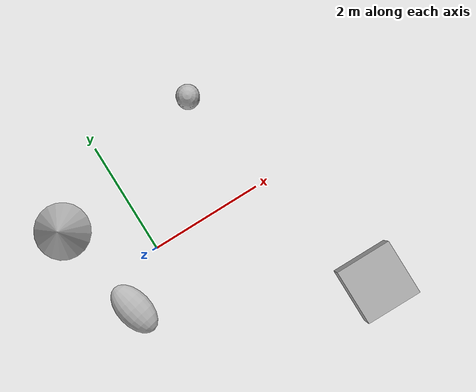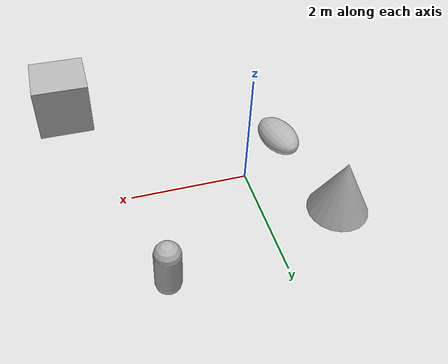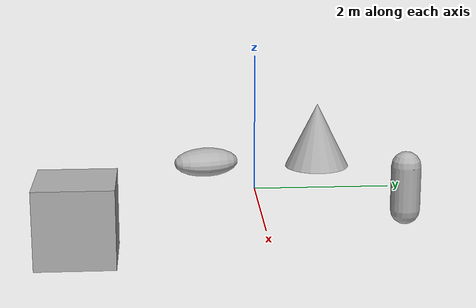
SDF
<sdf version="1.10">
 <world name="empty">
  <gravity>0 0 -9.8000000000000007</gravity>
  <physics type="ode">
   <max_step_size>0.01</max_step_size>
   <real_time_factor>1</real_time_factor>
   <real_time_update_rate>1000</real_time_update_rate>
  </physics>
  <plugin name="ignition::gazebo::systems::Physics" filename="libignition-gazebo-physics-system.so"/>
  <plugin name="ignition::gazebo::systems::UserCommands" filename="libignition-gazebo-user-commands-system.so"/>
  <plugin name="ignition::gazebo::systems::SceneBroadcaster" filename="libignition-gazebo-scene-broadcaster-system.so"/>
  <plugin name="ignition::gazebo::systems::Imu" filename="ignition-gazebo-imu-system"/>
  <plugin name="ignition::gazebo::systems::Sensors" filename="ignition-gazebo-sensors-system">
   <render_engine>ogre2</render_engine>
  </plugin>
  <scene>
   <ambient>1 1 1 1</ambient>
   <background>0.300000012 0.699999988 0.899999976 1</background>
   <shadows>false</shadows>
   <grid>false</grid>
  </scene>
  <magnetic_field>5.5644999999999998e-06 2.2875799999999999e-05 -4.2388400000000002e-05</magnetic_field>
  <atmosphere type="adiabatic"/>
  <model name="ground_plane">
   <static>true</static>
   <link name="link">
    <collision name="collision">
     <geometry><plane><normal>0 0 1</normal><size>1 1</size></plane></geometry>
    </collision>
    <inertial>
     <mass>1</mass>
     <inertia><ixx>1</ixx><ixy>0</ixy><ixz>0</ixz><iyy>1</iyy><iyz>0</iyz><izz>1</izz></inertia>
    </inertial>
   </link>
  </model>
  <model name="box">
   <pose>2.870149870721391 -2.432829395145315 0.49999834952495009 1.0192298441043201e-06 6.6832437451908342e-07 -0.0010202773987914747</pose>
   <link name="box_link">
    <inertial>
     <inertia><ixx>0.16666</ixx><ixy>0</ixy><ixz>0</ixz><iyy>0.16666</iyy><iyz>0</iyz><izz>0.16666</izz></inertia>
     <mass>1</mass>
    </inertial>
    <collision name="box_collision"><geometry><box><size>1 1 1</size></box></geometry></collision>
    <visual name="box_visual">
     <geometry><box><size>1 1 1</size></box></geometry>
     <material>
      <ambient>0.300000012 0.300000012 0.300000012 1</ambient>
      <diffuse>0.699999988 0.699999988 0.699999988 1</diffuse>
      <specular>1 1 1 1</specular>
     </material>
    </visual>
   </link>
   <static>false</static>
  </model>
  <model name="capsule">
   <pose>1.806267929976749 1.888380738728205 0.499999990200098 0 0 0</pose>
   <link name="capsule_link">
    <inertial>
     <inertia>
      <ixx>0.074153999999999998</ixx>
      <ixy>0</ixy>
      <ixz>0</ixz>
      <iyy>0.074153999999999998</iyy>
      <iyz>0</iyz>
      <izz>0.018769000000000001</izz>
     </inertia>
     <mass>1</mass>
    </inertial>
    <collision name="capsule_collision">
     <geometry>
      <capsule><radius>0.20000000000000001</radius><length>0.59999999999999998</length></capsule>
     </geometry>
    </collision>
    <visual name="capsule_visual">
     <geometry>
      <capsule><radius>0.20000000000000001</radius><length>0.59999999999999998</length></capsule>
     </geometry>
     <material>
      <ambient>0.300000012 0.300000012 0.300000012 1</ambient>
      <diffuse>0.699999988 0.699999988 0.699999988 1</diffuse>
      <specular>1 1 1 1</specular>
     </material>
    </visual>
   </link>
   <static>false</static>
  </model>
  <model name="cone">
   <pose>-1.2287782968905205 1.0917327955051188 0.49999852114302573 1.0472737930521563e-06 -1.5017882282358858e-06 2.8999997201863989e-05</pose>
   <link name="cone_link">
    <inertial>
     <inertia>
      <ixx>0.074999999999999997</ixx>
      <ixy>0</ixy>
      <ixz>0</ixz>
      <iyy>0.074999999999999997</iyy>
      <iyz>0</iyz>
      <izz>0.074999999999999997</izz>
     </inertia>
     <mass>1</mass>
    </inertial>
    <collision name="cone_collision">
     <geometry><cone><radius>0.5</radius><length>1</length></cone></geometry>
    </collision>
    <visual name="cone_visual">
     <geometry><cone><radius>0.5</radius><length>1</length></cone></geometry>
     <material>
      <ambient>0.300000012 0.300000012 0.300000012 1</ambient>
      <diffuse>0.699999988 0.699999988 0.699999988 1</diffuse>
      <specular>1 1 1 1</specular>
     </material>
    </visual>
   </link>
   <static>false</static>
  </model>
  <model name="ellipsoid">
   <pose>-0.86748812064506842 -0.6833450201765221 0.18666819111296223 -1.5707968667772905 1.3774949422214118 -2.9335804389940412</pose>
   <link name="ellipsoid_link">
    <inertial>
     <inertia>
      <ixx>0.068000000000000005</ixx>
      <ixy>0</ixy>
      <ixz>0</ixz>
      <iyy>0.058000000000000003</iyy>
      <iyz>0</iyz>
      <izz>0.025999999999999999</izz>
     </inertia>
     <mass>1</mass>
    </inertial>
    <collision name="ellipsoid_collision">
     <geometry><ellipsoid><radii>0.20000000000000001 0.29999999999999999 0.5</radii></ellipsoid></geometry>
    </collision>
    <visual name="ellipsoid_visual">
     <geometry><ellipsoid><radii>0.20000000000000001 0.29999999999999999 0.5</radii></ellipsoid></geometry>
     <material>
      <ambient>0.300000012 0.300000012 0.300000012 1</ambient>
      <diffuse>0.699999988 0.699999988 0.699999988 1</diffuse>
      <specular>1 1 1 1</specular>
     </material>
    </visual>
   </link>
   <static>false</static>
  </model>
  <light name="sun" type="directional">
   <pose>-5 -3 10 0 0 0</pose>
   <cast_shadows>false</cast_shadows>
   <intensity>1</intensity>
   <direction>0 0 -1</direction>
   <diffuse>1 1 1 1</diffuse>
   <specular>1 1 1 1</specular>
   <attenuation><range>10</range><linear>1</linear><constant>1</constant><quadratic>0</quadratic></attenuation>
   <spot><inner_angle>0</inner_angle><outer_angle>0</outer_angle><falloff>0</falloff></spot>
  </light>
 </world>
</sdf>
